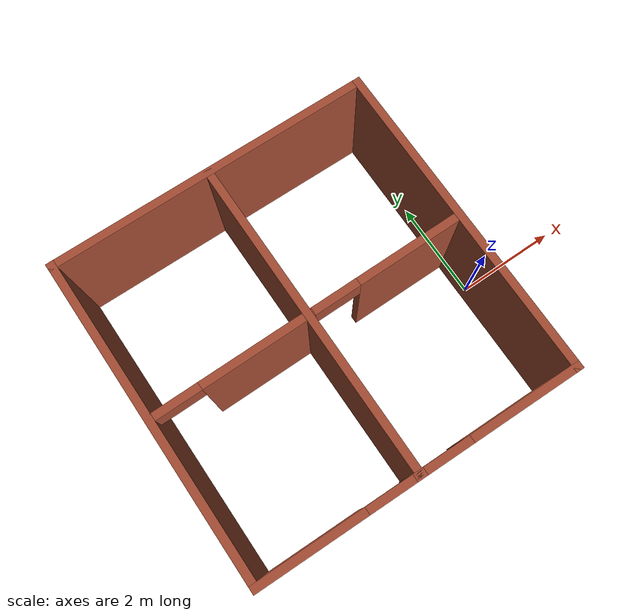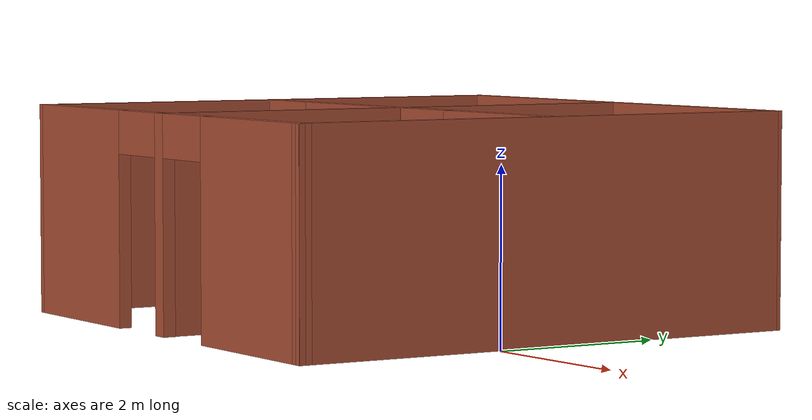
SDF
<?xml version='1.0'?>
<sdf version='1.7'>
  <model name='Robocup_2024'>
    <pose>-3.1474 0.708074 0 0 -0 0</pose>
    <link name='Wall_10'>
      <collision name='Wall_10_Collision'>
        <geometry>
          <box>
            <size>6.29 0.15 2.5</size>
          </box>
        </geometry>
        <pose>0 0 1.25 0 -0 0</pose>
      </collision>
      <visual name='Wall_10_Visual'>
        <pose>0 0 1.25 0 -0 0</pose>
        <geometry>
          <box>
            <size>6.29 0.15 2.5</size>
          </box>
        </geometry>
        <material>
          <script>
            <uri>file://media/materials/scripts/gazebo.material</uri>
            <name>Gazebo/Bricks</name>
          </script>
          <ambient>1 1 1 1</ambient>
        </material>
        <meta>
          <layer>0</layer>
        </meta>
      </visual>
      <pose>-0.001689 3.09 0 0 -0 3.12848</pose>
    </link>
    <link name='Wall_16'>
      <collision name='Wall_16_Collision'>
        <geometry>
          <box>
            <size>6.25 0.15 2.5</size>
          </box>
        </geometry>
        <pose>0 0 1.25 0 -0 0</pose>
      </collision>
      <visual name='Wall_16_Visual'>
        <pose>0 0 1.25 0 -0 0</pose>
        <geometry>
          <box>
            <size>6.25 0.15 2.5</size>
          </box>
        </geometry>
        <material>
          <script>
            <uri>file://media/materials/scripts/gazebo.material</uri>
            <name>Gazebo/Bricks</name>
          </script>
          <ambient>1 1 1 1</ambient>
        </material>
        <meta>
          <layer>0</layer>
        </meta>
      </visual>
      <pose>-0.021157 0.000261 0 0 -0 1.5708</pose>
    </link>
    <link name='Wall_21'>
      <pose>-0.021157 0.030261 0 0 -0 0</pose>
      <visual name='Wall_21_Visual_0'>
        <pose>-3.05879 0 1.25 0 -0 0</pose>
        <geometry>
          <box>
            <size>0.13241 0.15 2.5</size>
          </box>
        </geometry>
        <material>
          <script>
            <uri>file://media/materials/scripts/gazebo.material</uri>
            <name>Gazebo/Bricks</name>
          </script>
          <ambient>0.921569 0.807843 0.615686 1</ambient>
        </material>
        <meta>
          <layer>0</layer>
        </meta>
      </visual>
      <collision name='Wall_21_Collision_0'>
        <geometry>
          <box>
            <size>0.13241 0.15 2.5</size>
          </box>
        </geometry>
        <pose>-3.05879 0 1.25 0 -0 0</pose>
      </collision>
      <visual name='Wall_21_Visual_1'>
        <pose>-0.998902 0 1.25 0 -0 0</pose>
        <geometry>
          <box>
            <size>2.18738 0.15 2.5</size>
          </box>
        </geometry>
        <material>
          <script>
            <uri>file://media/materials/scripts/gazebo.material</uri>
            <name>Gazebo/Bricks</name>
          </script>
          <ambient>0.921569 0.807843 0.615686 1</ambient>
        </material>
        <meta>
          <layer>0</layer>
        </meta>
      </visual>
      <collision name='Wall_21_Collision_1'>
        <geometry>
          <box>
            <size>2.18738 0.15 2.5</size>
          </box>
        </geometry>
        <pose>-0.998902 0 1.25 0 -0 0</pose>
      </collision>
      <visual name='Wall_21_Visual_2'>
        <pose>2.05989 0 1.25 0 -0 0</pose>
        <geometry>
          <box>
            <size>2.13021 0.15 2.5</size>
          </box>
        </geometry>
        <material>
          <script>
            <uri>file://media/materials/scripts/gazebo.material</uri>
            <name>Gazebo/Bricks</name>
          </script>
          <ambient>0.921569 0.807843 0.615686 1</ambient>
        </material>
        <meta>
          <layer>0</layer>
        </meta>
      </visual>
      <collision name='Wall_21_Collision_2'>
        <geometry>
          <box>
            <size>2.13021 0.15 2.5</size>
          </box>
        </geometry>
        <pose>2.05989 0 1.25 0 -0 0</pose>
      </collision>
      <visual name='Wall_21_Visual_3'>
        <pose>-2.54259 0 2.25 0 -0 0</pose>
        <geometry>
          <box>
            <size>0.9 0.15 0.5</size>
          </box>
        </geometry>
        <material>
          <script>
            <uri>file://media/materials/scripts/gazebo.material</uri>
            <name>Gazebo/Bricks</name>
          </script>
          <ambient>0.921569 0.807843 0.615686 1</ambient>
        </material>
        <meta>
          <layer>0</layer>
        </meta>
      </visual>
      <collision name='Wall_21_Collision_3'>
        <geometry>
          <box>
            <size>0.9 0.15 0.5</size>
          </box>
        </geometry>
        <pose>-2.54259 0 2.25 0 -0 0</pose>
      </collision>
      <visual name='Wall_21_Visual_4'>
        <pose>0.544786 0 2.25 0 -0 0</pose>
        <geometry>
          <box>
            <size>0.9 0.15 0.5</size>
          </box>
        </geometry>
        <material>
          <script>
            <uri>file://media/materials/scripts/gazebo.material</uri>
            <name>Gazebo/Bricks</name>
          </script>
          <ambient>0.921569 0.807843 0.615686 1</ambient>
        </material>
        <meta>
          <layer>0</layer>
        </meta>
      </visual>
      <collision name='Wall_21_Collision_4'>
        <geometry>
          <box>
            <size>0.9 0.15 0.5</size>
          </box>
        </geometry>
        <pose>0.544786 0 2.25 0 -0 0</pose>
      </collision>
    </link>
    <link name='Wall_4'>
      <collision name='Wall_4_Collision'>
        <geometry>
          <box>
            <size>6.33 0.15 2.5</size>
          </box>
        </geometry>
        <pose>0 0 1.25 0 -0 0</pose>
      </collision>
      <visual name='Wall_4_Visual'>
        <pose>0 0 1.25 0 -0 0</pose>
        <geometry>
          <box>
            <size>6.33 0.15 2.5</size>
          </box>
        </geometry>
        <material>
          <script>
            <uri>file://media/materials/scripts/gazebo.material</uri>
            <name>Gazebo/Bricks</name>
          </script>
          <ambient>1 1 1 1</ambient>
        </material>
        <meta>
          <layer>0</layer>
        </meta>
      </visual>
      <pose>3.06832 -0.040257 0 0 -0 -1.5708</pose>
    </link>
    <link name='Wall_5'>
      <pose>-0.001421 -3.09 0 0 -0 3.12848</pose>
      <visual name='Wall_5_Visual_0'>
        <pose>-2.05974 0 1.25 0 -0 0</pose>
        <geometry>
          <box>
            <size>2.17053 0.15 2.5</size>
          </box>
        </geometry>
        <material>
          <script>
            <uri>file://media/materials/scripts/gazebo.material</uri>
            <name>Gazebo/Bricks</name>
          </script>
          <ambient>1 1 1 1</ambient>
        </material>
        <meta>
          <layer>0</layer>
        </meta>
      </visual>
      <collision name='Wall_5_Collision_0'>
        <geometry>
          <box>
            <size>2.17053 0.15 2.5</size>
          </box>
        </geometry>
        <pose>-2.05974 0 1.25 0 -0 0</pose>
      </collision>
      <visual name='Wall_5_Visual_1'>
        <pose>0.023692 0 1.25 0 -0 0</pose>
        <geometry>
          <box>
            <size>0.196332 0.15 2.5</size>
          </box>
        </geometry>
        <material>
          <script>
            <uri>file://media/materials/scripts/gazebo.material</uri>
            <name>Gazebo/Bricks</name>
          </script>
          <ambient>1 1 1 1</ambient>
        </material>
        <meta>
          <layer>0</layer>
        </meta>
      </visual>
      <collision name='Wall_5_Collision_1'>
        <geometry>
          <box>
            <size>0.196332 0.15 2.5</size>
          </box>
        </geometry>
        <pose>0.023692 0 1.25 0 -0 0</pose>
      </collision>
      <visual name='Wall_5_Visual_2'>
        <pose>2.08343 0 1.25 0 -0 0</pose>
        <geometry>
          <box>
            <size>2.12314 0.15 2.5</size>
          </box>
        </geometry>
        <material>
          <script>
            <uri>file://media/materials/scripts/gazebo.material</uri>
            <name>Gazebo/Bricks</name>
          </script>
          <ambient>1 1 1 1</ambient>
        </material>
        <meta>
          <layer>0</layer>
        </meta>
      </visual>
      <collision name='Wall_5_Collision_2'>
        <geometry>
          <box>
            <size>2.12314 0.15 2.5</size>
          </box>
        </geometry>
        <pose>2.08343 0 1.25 0 -0 0</pose>
      </collision>
      <visual name='Wall_5_Visual_3'>
        <pose>-0.524474 0 2.25 0 -0 0</pose>
        <geometry>
          <box>
            <size>0.9 0.15 0.5</size>
          </box>
        </geometry>
        <material>
          <script>
            <uri>file://media/materials/scripts/gazebo.material</uri>
            <name>Gazebo/Bricks</name>
          </script>
          <ambient>1 1 1 1</ambient>
        </material>
        <meta>
          <layer>0</layer>
        </meta>
      </visual>
      <collision name='Wall_5_Collision_3'>
        <geometry>
          <box>
            <size>0.9 0.15 0.5</size>
          </box>
        </geometry>
        <pose>-0.524474 0 2.25 0 -0 0</pose>
      </collision>
      <visual name='Wall_5_Visual_4'>
        <pose>0.571858 0 2.25 0 -0 0</pose>
        <geometry>
          <box>
            <size>0.9 0.15 0.5</size>
          </box>
        </geometry>
        <material>
          <script>
            <uri>file://media/materials/scripts/gazebo.material</uri>
            <name>Gazebo/Bricks</name>
          </script>
          <ambient>1 1 1 1</ambient>
        </material>
        <meta>
          <layer>0</layer>
        </meta>
      </visual>
      <collision name='Wall_5_Collision_4'>
        <geometry>
          <box>
            <size>0.9 0.15 0.5</size>
          </box>
        </geometry>
        <pose>0.571858 0 2.25 0 -0 0</pose>
      </collision>
    </link>
    <link name='Wall_6'>
      <collision name='Wall_6_Collision'>
        <geometry>
          <box>
            <size>6.33 0.15 2.5</size>
          </box>
        </geometry>
        <pose>0 0 1.25 0 -0 0</pose>
      </collision>
      <visual name='Wall_6_Visual'>
        <pose>0 0 1.25 0 -0 0</pose>
        <geometry>
          <box>
            <size>6.33 0.15 2.5</size>
          </box>
        </geometry>
        <material>
          <script>
            <uri>file://media/materials/scripts/gazebo.material</uri>
            <name>Gazebo/Bricks</name>
          </script>
          <ambient>1 1 1 1</ambient>
        </material>
        <meta>
          <layer>0</layer>
        </meta>
      </visual>
      <pose>-3.07143 0.040261 0 0 -0 1.57088</pose>
    </link>
    <static>1</static>
  </model>
</sdf>
